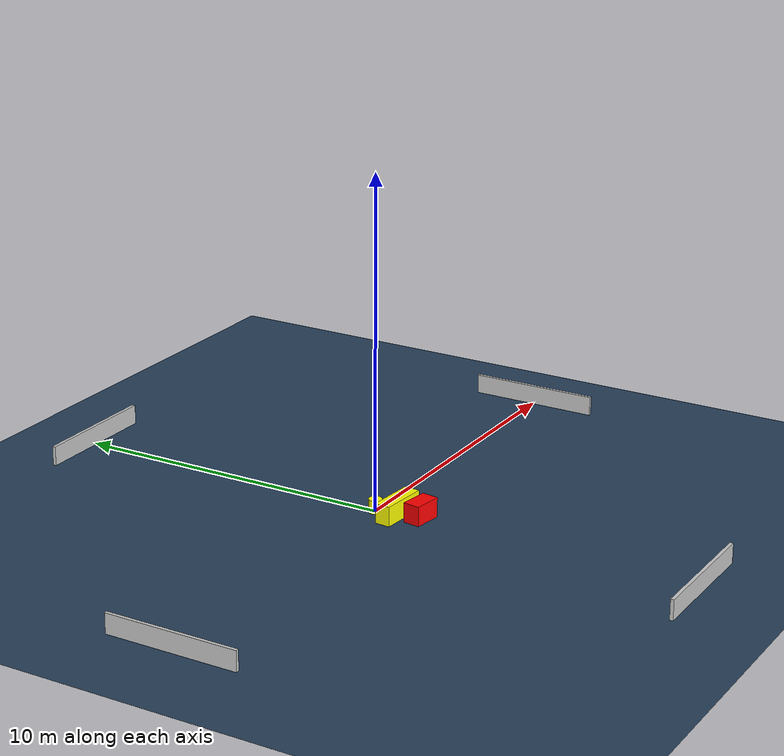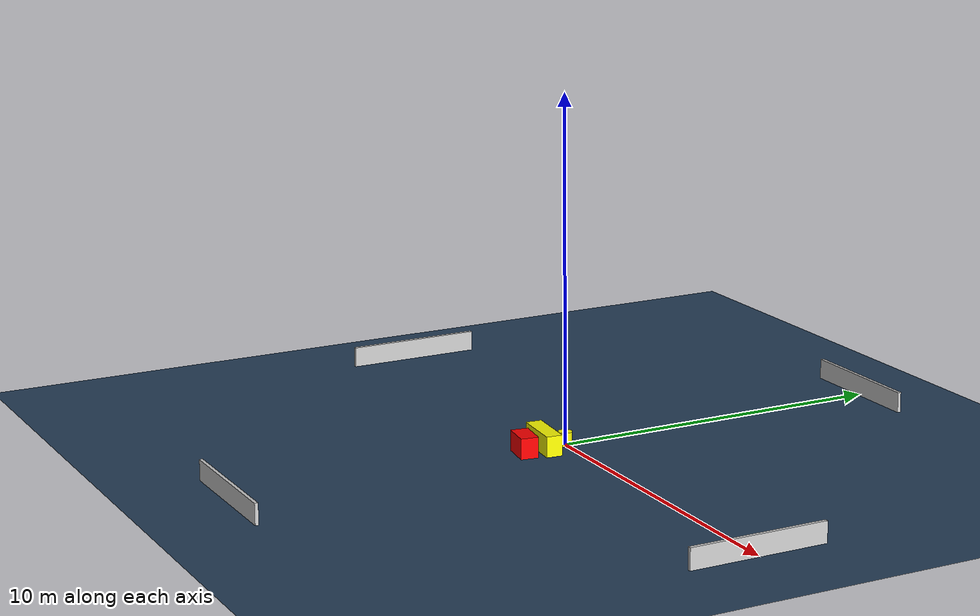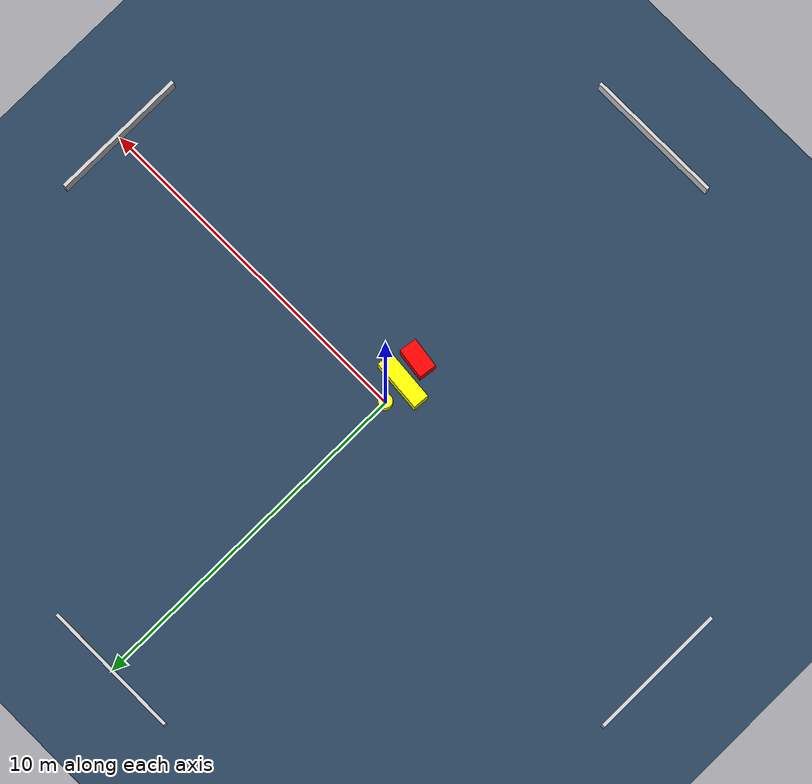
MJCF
<?xml version="1.0" ?>
<mujoco model="generated_environment">
  <option timestep="0.01" integrator="RK4" cone="elliptic"/>
  <default>
    <geom density="1"/>
  </default>
  <asset>
    <texture builtin="gradient" height="3072" name="skybox" rgb1="0.3 0.5 0.7" rgb2="0 0 0" type="skybox" width="512"/>
    <texture builtin="checker" height="300" name="groundplane" rgb1="0.2 0.3 0.4" rgb2="0.1 0.2 0.3" type="2d" width="300"/>
    <material name="groundplane" reflectance="0.2" texrepeat="5 5" texture="groundplane"/>
  </asset>
  <worldbody>
    <light dir="0 0 -1" directional="true" pos="0 0 1.5"/>
    <geom condim="3" friction="0.5 0.005 0.001" material="groundplane" name="floor" pos="0 0 0" size="0 0 0.05" type="plane"/>
    <body name="walls">
      <geom name="wall_1" condim="4" pos="-10.0 0.0 0.3" rgba="0.800000011920929 0.800000011920929 0.800000011920929 1.0" size="0.05 2.0 0.3" type="box"/>
      <geom name="wall_2" condim="4" pos="10.0 0.0 0.3" rgba="0.800000011920929 0.800000011920929 0.800000011920929 1.0" size="0.05 2.0 0.3" type="box"/>
      <geom name="wall_3" condim="4" pos="0.0 -10.0 0.3" rgba="0.800000011920929 0.800000011920929 0.800000011920929 1.0" size="2.0 0.05 0.3" type="box"/>
      <geom name="wall_4" condim="4" pos="0.0 10.0 0.3" rgba="0.800000011920929 0.800000011920929 0.800000011920929 1.0" size="2.0 0.05 0.3" type="box"/>
    </body>
    <body name="robot">
      <joint name="joint_x" type="slide" pos="0 0 0" axis="1 0 0"/>
      <joint name="joint_y" type="slide" pos="0 0 0" axis="0 1 0"/>
      <geom name="robot" type="cylinder" pos="0.0 0.0 0.2" size="0.2 0.2 0.0" mass="5.0" friction="1.0 0.005 0.0001" condim="4" rgba="1.0 1.0 0.0 1.0"/>
    </body>
    <body name="obstacle_1_movable">
      <geom name="obstacle_1_movable" condim="4" pos="0.045811525676910936 -0.6935616271048975 0.3" euler="0 0 85.1450387676728" friction="0.0 0.005 0.001" rgba="1.0 1.0 0.0 1.0" size="0.23475509229575553 0.7438650693550866 0.3" type="box" mass="0.1"/>
      <joint type="free"/>
    </body>
    <body name="obstacle_2_static">
      <geom name="obstacle_2_static" condim="4" pos="0.18480685300675453 -1.3787214463647448 0.3" euler="0 0 171.88839616455925" friction="0.0 0.005 0.001" rgba="1.0 0.0 0.0 1.0" size="0.44148368123954534 0.25563419561800077 0.3" type="box"/>
    </body>
  </worldbody>
  <actuator>
    <motor name="actuator_x" joint="joint_x" gear="1" ctrlrange="-1 1"/>
    <motor name="actuator_y" joint="joint_y" gear="1" ctrlrange="-1 1"/>
  </actuator>
</mujoco>
